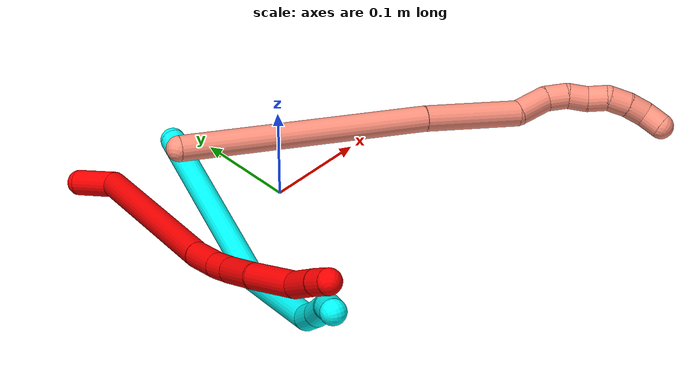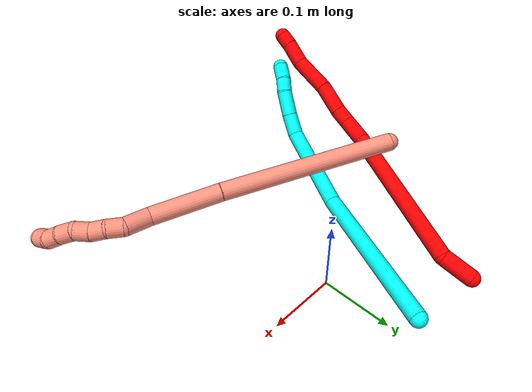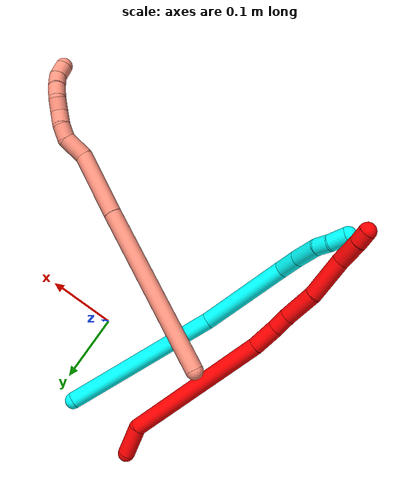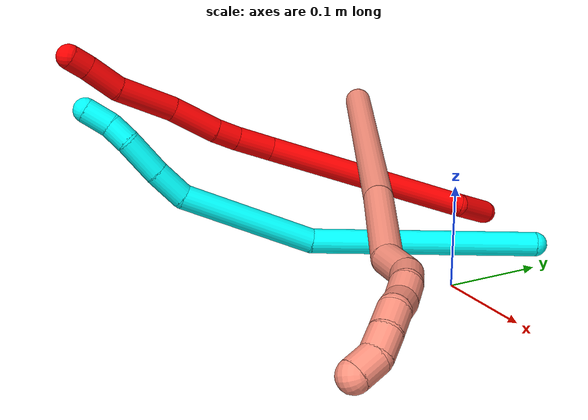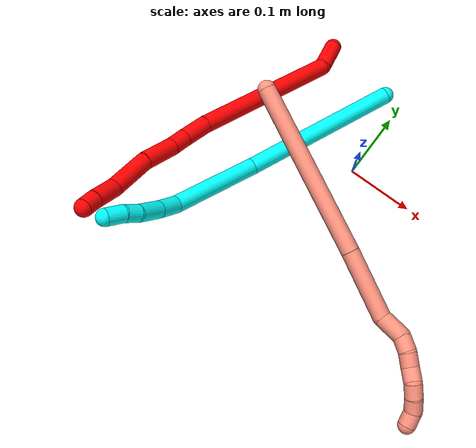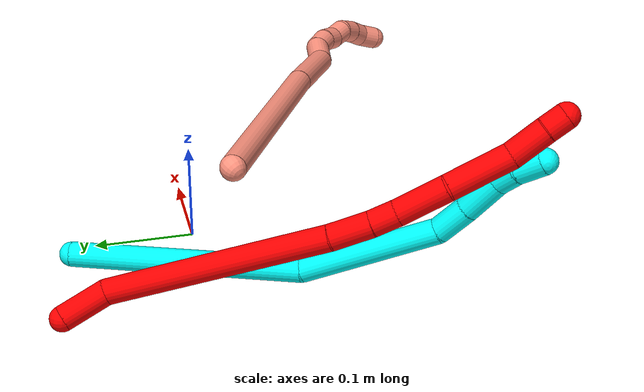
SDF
<sdf version="1.7">
 <world name="default">
  <model name="photoneo_s_sensor">
   <static>1</static>
   <pose>0 0 2 1.57079 1.57079 3.14159</pose>
   <link name="link">
    <inertial><mass>0.1</mass></inertial>
    <sensor name="sensor" type="depth">
     <update_rate>30</update_rate>
     <camera>
      <horizontal_fov>1.22</horizontal_fov>
      <image><width>1920</width><height>1200</height><format>B8G8R8</format></image>
      <clip><near>0.1</near><far>4</far></clip>
      <depth_camera><output>points</output></depth_camera>
     </camera>
     <plugin name="camera_plugin" filename="libgazebo_ros_depth_camera.so">
      <baseline>0.2</baseline>
      <alwaysOn>1</alwaysOn>
      <updateRate>0.0</updateRate>
      <cameraName>camera_ir</cameraName>
      <imageTopicName>/camera/color/image_raw</imageTopicName>
      <cameraInfoTopicName>/camera/color/camera_info</cameraInfoTopicName>
      <depthImageTopicName>/camera/depth/image_raw</depthImageTopicName>
      <depthImageCameraInfoTopicName>/camera/depth/camera_info</depthImageCameraInfoTopicName>
      <pointCloudTopicName>/camera/depth/points</pointCloudTopicName>
      <frameName>fr_optical</frameName>
      <pointCloudCutoff>0.1</pointCloudCutoff>
      <pointCloudCutoffMax>2.0</pointCloudCutoffMax>
      <distortionK1>0</distortionK1>
      <distortionK2>0</distortionK2>
      <distortionK3>0</distortionK3>
      <distortionT1>0</distortionT1>
      <distortionT2>0</distortionT2>
      <CxPrime>0</CxPrime>
      <Cx>0</Cx>
      <Cy>0</Cy>
      <focalLength>0</focalLength>
      <hackBaseline>0</hackBaseline>
     </plugin>
    </sensor>
   </link>
  </model>
  <model name="bin">
   <static>1</static>
   <link name="bottom">
    <collision name="collision-bottom">
     <pose>0 0 -0.01 0 -0 0</pose>
     <geometry><box><size>0.8 0.6 0.02</size></box></geometry>
     <surface>
      <friction><ode><mu>100</mu><mu2>100</mu2></ode></friction>
      <contact><collide_bitmask>65535</collide_bitmask></contact>
     </surface>
    </collision>
   </link>
   <link name="west_wall">
    <collision name="collision-west_wall">
     <pose>-0.41 0 0.1 0 -0 0</pose>
     <geometry><box><size>0.02 0.6 0.2</size></box></geometry>
     <surface>
      <friction><ode><mu>100</mu><mu2>100</mu2></ode></friction>
      <contact><collide_bitmask>65535</collide_bitmask></contact>
     </surface>
    </collision>
   </link>
   <link name="east_wall">
    <collision name="collision-east_wall">
     <pose>0.41 0 0.1 0 -0 0</pose>
     <geometry><box><size>0.02 0.6 0.2</size></box></geometry>
     <surface>
      <friction><ode><mu>100</mu><mu2>100</mu2></ode></friction>
      <contact><collide_bitmask>65535</collide_bitmask></contact>
     </surface>
    </collision>
   </link>
   <link name="south_wall">
    <collision name="collision-south_wall">
     <pose>0 -0.31 0.1 0 -0 0</pose>
     <geometry><box><size>0.8 0.02 0.2</size></box></geometry>
     <surface>
      <friction><ode><mu>100</mu><mu2>100</mu2></ode></friction>
      <contact><collide_bitmask>65535</collide_bitmask></contact>
     </surface>
    </collision>
   </link>
   <link name="north_wall">
    <collision name="collision-north_wall">
     <pose>0 0.31 0.1 0 -0 0</pose>
     <geometry><box><size>0.8 0.02 0.2</size></box></geometry>
     <surface>
      <friction><ode><mu>100</mu><mu2>100</mu2></ode></friction>
      <contact><collide_bitmask>65535</collide_bitmask></contact>
     </surface>
    </collision>
   </link>
  </model>
  <model name="2">
   <static>0</static>
   <link name="2">
    <collision name="collision-cylinder-e_1_1_4">
     <pose>-0.006942 -0.017919 0.013159 0.937369 -0.302648 -0.154109</pose>
     <geometry><cylinder><radius>0.0125</radius><length>0.046581</length></cylinder></geometry>
     <surface>
      <friction><ode><mu>1.16</mu><mu2>1.16</mu2><slip1>0</slip1><slip2>0</slip2></ode></friction>
      <contact><ode><kp>1e+06</kp><kd>1</kd><max_vel>0</max_vel><min_depth>0.001</min_depth></ode></contact>
     </surface>
    </collision>
    <visual name="visual-cylinder-e_1_1_4">
     <pose>-0.006942 -0.017919 0.013159 0.937369 -0.302648 -0.154109</pose>
     <geometry><cylinder><radius>0.0125</radius><length>0.046581</length></cylinder></geometry>
     <material><ambient>1 0 0 1</ambient></material>
    </visual>
    <collision name="collision-cylinder-e_2_4_5">
     <pose>-0.021427 -0.086339 0.123754 0.478177 -0.068625 -0.016733</pose>
     <geometry><cylinder><radius>0.0125</radius><length>0.220008</length></cylinder></geometry>
     <surface>
      <friction><ode><mu>1.16</mu><mu2>1.16</mu2><slip1>0</slip1><slip2>0</slip2></ode></friction>
      <contact><ode><kp>1e+06</kp><kd>1</kd><max_vel>0</max_vel><min_depth>0.001</min_depth></ode></contact>
     </surface>
    </collision>
    <visual name="visual-cylinder-e_2_4_5">
     <pose>-0.021427 -0.086339 0.123754 0.478177 -0.068625 -0.016733</pose>
     <geometry><cylinder><radius>0.0125</radius><length>0.220008</length></cylinder></geometry>
     <material><ambient>1 0 0 1</ambient></material>
    </visual>
    <collision name="collision-cylinder-e_3_5_6">
     <pose>-0.031318 -0.14754 0.23736 0.584617 -0.120539 -0.036314</pose>
     <geometry><cylinder><radius>0.0125</radius><length>0.039065</length></cylinder></geometry>
     <surface>
      <friction><ode><mu>1.16</mu><mu2>1.16</mu2><slip1>0</slip1><slip2>0</slip2></ode></friction>
      <contact><ode><kp>1e+06</kp><kd>1</kd><max_vel>0</max_vel><min_depth>0.001</min_depth></ode></contact>
     </surface>
    </collision>
    <visual name="visual-cylinder-e_3_5_6">
     <pose>-0.031318 -0.14754 0.23736 0.584617 -0.120539 -0.036314</pose>
     <geometry><cylinder><radius>0.0125</radius><length>0.039065</length></cylinder></geometry>
     <material><ambient>1 0 0 1</ambient></material>
    </visual>
    <collision name="collision-cylinder-e_4_6_7">
     <pose>-0.034874 -0.165921 0.263244 0.668945 -0.097182 -0.033797</pose>
     <geometry><cylinder><radius>0.0125</radius><length>0.024882</length></cylinder></geometry>
     <surface>
      <friction><ode><mu>1.16</mu><mu2>1.16</mu2><slip1>0</slip1><slip2>0</slip2></ode></friction>
      <contact><ode><kp>1e+06</kp><kd>1</kd><max_vel>0</max_vel><min_depth>0.001</min_depth></ode></contact>
     </surface>
    </collision>
    <visual name="visual-cylinder-e_4_6_7">
     <pose>-0.034874 -0.165921 0.263244 0.668945 -0.097182 -0.033797</pose>
     <geometry><cylinder><radius>0.0125</radius><length>0.024882</length></cylinder></geometry>
     <material><ambient>1 0 0 1</ambient></material>
    </visual>
    <collision name="collision-cylinder-e_5_7_8">
     <pose>-0.035489 -0.189228 0.292495 0.674713 0.023679 0.008306</pose>
     <geometry><cylinder><radius>0.0125</radius><length>0.050052</length></cylinder></geometry>
     <surface>
      <friction><ode><mu>1.16</mu><mu2>1.16</mu2><slip1>0</slip1><slip2>0</slip2></ode></friction>
      <contact><ode><kp>1e+06</kp><kd>1</kd><max_vel>0</max_vel><min_depth>0.001</min_depth></ode></contact>
     </surface>
    </collision>
    <visual name="visual-cylinder-e_5_7_8">
     <pose>-0.035489 -0.189228 0.292495 0.674713 0.023679 0.008306</pose>
     <geometry><cylinder><radius>0.0125</radius><length>0.050052</length></cylinder></geometry>
     <material><ambient>1 0 0 1</ambient></material>
    </visual>
    <collision name="collision-cylinder-e_6_8_9">
     <pose>-0.039434 -0.225745 0.334002 0.76017 -0.148586 -0.059454</pose>
     <geometry><cylinder><radius>0.0125</radius><length>0.061305</length></cylinder></geometry>
     <surface>
      <friction><ode><mu>1.16</mu><mu2>1.16</mu2><slip1>0</slip1><slip2>0</slip2></ode></friction>
      <contact><ode><kp>1e+06</kp><kd>1</kd><max_vel>0</max_vel><min_depth>0.001</min_depth></ode></contact>
     </surface>
    </collision>
    <visual name="visual-cylinder-e_6_8_9">
     <pose>-0.039434 -0.225745 0.334002 0.76017 -0.148586 -0.059454</pose>
     <geometry><cylinder><radius>0.0125</radius><length>0.061305</length></cylinder></geometry>
     <material><ambient>1 0 0 1</ambient></material>
    </visual>
    <collision name="collision-cylinder-e_7_9_10">
     <pose>-0.042362 -0.260451 0.368372 0.839395 0.086473 0.038604</pose>
     <geometry><cylinder><radius>0.0125</radius><length>0.037271</length></cylinder></geometry>
     <surface>
      <friction><ode><mu>1.16</mu><mu2>1.16</mu2><slip1>0</slip1><slip2>0</slip2></ode></friction>
      <contact><ode><kp>1e+06</kp><kd>1</kd><max_vel>0</max_vel><min_depth>0.001</min_depth></ode></contact>
     </surface>
    </collision>
    <visual name="visual-cylinder-e_7_9_10">
     <pose>-0.042362 -0.260451 0.368372 0.839395 0.086473 0.038604</pose>
     <geometry><cylinder><radius>0.0125</radius><length>0.037271</length></cylinder></geometry>
     <material><ambient>1 0 0 1</ambient></material>
    </visual>
    <collision name="collision-cylinder-e_8_10_2">
     <pose>-0.040845 -0.282134 0.387603 0.855687 -0.008854 -0.004037</pose>
     <geometry><cylinder><radius>0.0125</radius><length>0.020836</length></cylinder></geometry>
     <surface>
      <friction><ode><mu>1.16</mu><mu2>1.16</mu2><slip1>0</slip1><slip2>0</slip2></ode></friction>
      <contact><ode><kp>1e+06</kp><kd>1</kd><max_vel>0</max_vel><min_depth>0.001</min_depth></ode></contact>
     </surface>
    </collision>
    <visual name="visual-cylinder-e_8_10_2">
     <pose>-0.040845 -0.282134 0.387603 0.855687 -0.008854 -0.004037</pose>
     <geometry><cylinder><radius>0.0125</radius><length>0.020836</length></cylinder></geometry>
     <material><ambient>1 0 0 1</ambient></material>
    </visual>
    <collision name="collision-sphere-2">
     <pose>-0.040937 -0.289999 0.394434 0 -0 0</pose>
     <geometry><sphere><radius>0.0125</radius></sphere></geometry>
     <surface>
      <friction><ode><mu>1.16</mu><mu2>1.16</mu2><slip1>0</slip1><slip2>0</slip2></ode></friction>
      <contact><ode><kp>1e+06</kp><kd>1</kd><max_vel>0</max_vel><min_depth>0.001</min_depth></ode></contact>
     </surface>
    </collision>
    <visual name="visual-sphere-2">
     <pose>-0.040937 -0.289999 0.394434 0 -0 0</pose>
     <geometry><sphere><radius>0.0125</radius></sphere></geometry>
     <material><ambient>1 0 0 1</ambient></material>
    </visual>
    <collision name="collision-sphere-10">
     <pose>-0.040753 -0.274269 0.380772 0 -0 0</pose>
     <geometry><sphere><radius>0.0125</radius></sphere></geometry>
     <surface>
      <friction><ode><mu>1.16</mu><mu2>1.16</mu2><slip1>0</slip1><slip2>0</slip2></ode></friction>
      <contact><ode><kp>1e+06</kp><kd>1</kd><max_vel>0</max_vel><min_depth>0.001</min_depth></ode></contact>
     </surface>
    </collision>
    <visual name="visual-sphere-10">
     <pose>-0.040753 -0.274269 0.380772 0 -0 0</pose>
     <geometry><sphere><radius>0.0125</radius></sphere></geometry>
     <material><ambient>1 0 0 1</ambient></material>
    </visual>
    <collision name="collision-sphere-9">
     <pose>-0.043972 -0.246634 0.355971 0 -0 0</pose>
     <geometry><sphere><radius>0.0125</radius></sphere></geometry>
     <surface>
      <friction><ode><mu>1.16</mu><mu2>1.16</mu2><slip1>0</slip1><slip2>0</slip2></ode></friction>
      <contact><ode><kp>1e+06</kp><kd>1</kd><max_vel>0</max_vel><min_depth>0.001</min_depth></ode></contact>
     </surface>
    </collision>
    <visual name="visual-sphere-9">
     <pose>-0.043972 -0.246634 0.355971 0 -0 0</pose>
     <geometry><sphere><radius>0.0125</radius></sphere></geometry>
     <material><ambient>1 0 0 1</ambient></material>
    </visual>
    <collision name="collision-sphere-4">
     <pose>-0.013883 -0.035838 0.026319 0 -0 0</pose>
     <geometry><sphere><radius>0.0125</radius></sphere></geometry>
     <surface>
      <friction><ode><mu>1.16</mu><mu2>1.16</mu2><slip1>0</slip1><slip2>0</slip2></ode></friction>
      <contact><ode><kp>1e+06</kp><kd>1</kd><max_vel>0</max_vel><min_depth>0.001</min_depth></ode></contact>
     </surface>
    </collision>
    <visual name="visual-sphere-4">
     <pose>-0.013883 -0.035838 0.026319 0 -0 0</pose>
     <geometry><sphere><radius>0.0125</radius></sphere></geometry>
     <material><ambient>1 0 0 1</ambient></material>
    </visual>
    <collision name="collision-sphere-1">
     <geometry><sphere><radius>0.0125</radius></sphere></geometry>
     <surface>
      <friction><ode><mu>1.16</mu><mu2>1.16</mu2><slip1>0</slip1><slip2>0</slip2></ode></friction>
      <contact><ode><kp>1e+06</kp><kd>1</kd><max_vel>0</max_vel><min_depth>0.001</min_depth></ode></contact>
     </surface>
    </collision>
    <visual name="visual-sphere-1">
     <geometry><sphere><radius>0.0125</radius></sphere></geometry>
     <material><ambient>1 0 0 1</ambient></material>
    </visual>
    <collision name="collision-sphere-8">
     <pose>-0.034896 -0.204857 0.312032 0 -0 0</pose>
     <geometry><sphere><radius>0.0125</radius></sphere></geometry>
     <surface>
      <friction><ode><mu>1.16</mu><mu2>1.16</mu2><slip1>0</slip1><slip2>0</slip2></ode></friction>
      <contact><ode><kp>1e+06</kp><kd>1</kd><max_vel>0</max_vel><min_depth>0.001</min_depth></ode></contact>
     </surface>
    </collision>
    <visual name="visual-sphere-8">
     <pose>-0.034896 -0.204857 0.312032 0 -0 0</pose>
     <geometry><sphere><radius>0.0125</radius></sphere></geometry>
     <material><ambient>1 0 0 1</ambient></material>
    </visual>
    <collision name="collision-sphere-5">
     <pose>-0.02897 -0.136839 0.22119 0 -0 0</pose>
     <geometry><sphere><radius>0.0125</radius></sphere></geometry>
     <surface>
      <friction><ode><mu>1.16</mu><mu2>1.16</mu2><slip1>0</slip1><slip2>0</slip2></ode></friction>
      <contact><ode><kp>1e+06</kp><kd>1</kd><max_vel>0</max_vel><min_depth>0.001</min_depth></ode></contact>
     </surface>
    </collision>
    <visual name="visual-sphere-5">
     <pose>-0.02897 -0.136839 0.22119 0 -0 0</pose>
     <geometry><sphere><radius>0.0125</radius></sphere></geometry>
     <material><ambient>1 0 0 1</ambient></material>
    </visual>
    <collision name="collision-sphere-6">
     <pose>-0.033667 -0.158242 0.25353 0 -0 0</pose>
     <geometry><sphere><radius>0.0125</radius></sphere></geometry>
     <surface>
      <friction><ode><mu>1.16</mu><mu2>1.16</mu2><slip1>0</slip1><slip2>0</slip2></ode></friction>
      <contact><ode><kp>1e+06</kp><kd>1</kd><max_vel>0</max_vel><min_depth>0.001</min_depth></ode></contact>
     </surface>
    </collision>
    <visual name="visual-sphere-6">
     <pose>-0.033667 -0.158242 0.25353 0 -0 0</pose>
     <geometry><sphere><radius>0.0125</radius></sphere></geometry>
     <material><ambient>1 0 0 1</ambient></material>
    </visual>
    <collision name="collision-sphere-7">
     <pose>-0.036081 -0.1736 0.272958 0 -0 0</pose>
     <geometry><sphere><radius>0.0125</radius></sphere></geometry>
     <surface>
      <friction><ode><mu>1.16</mu><mu2>1.16</mu2><slip1>0</slip1><slip2>0</slip2></ode></friction>
      <contact><ode><kp>1e+06</kp><kd>1</kd><max_vel>0</max_vel><min_depth>0.001</min_depth></ode></contact>
     </surface>
    </collision>
    <visual name="visual-sphere-7">
     <pose>-0.036081 -0.1736 0.272958 0 -0 0</pose>
     <geometry><sphere><radius>0.0125</radius></sphere></geometry>
     <material><ambient>1 0 0 1</ambient></material>
    </visual>
    <inertial>
     <pose>-0.027505 -0.137237 0.201168 0 -0 0</pose>
     <mass>0.5</mass>
     <inertia>
      <ixx>0.000932</ixx>
      <ixy>0</ixy>
      <ixz>0</ixz>
      <iyy>0.000799</iyy>
      <iyz>0</iyz>
      <izz>0.000551</izz>
     </inertia>
    </inertial>
   </link>
   <pose>-0.137813 0.141772 0.011588 -1.48739 -0.772404 2.34294</pose>
  </model>
  <model name="3">
   <static>0</static>
   <link name="3">
    <collision name="collision-cylinder-e_1_1_4">
     <pose>-0.087629 -0.071217 0.028877 1.18557 -0.850845 -0.592445</pose>
     <geometry><cylinder><radius>0.0125</radius><length>0.233106</length></cylinder></geometry>
     <surface>
      <friction><ode><mu>1.16</mu><mu2>1.16</mu2><slip1>0</slip1><slip2>0</slip2></ode></friction>
      <contact><ode><kp>1e+06</kp><kd>1</kd><max_vel>0</max_vel><min_depth>0.001</min_depth></ode></contact>
     </surface>
    </collision>
    <visual name="visual-cylinder-e_1_1_4">
     <pose>-0.087629 -0.071217 0.028877 1.18557 -0.850845 -0.592445</pose>
     <geometry><cylinder><radius>0.0125</radius><length>0.233106</length></cylinder></geometry>
     <material><ambient>0.003922 1 0.996078 1</ambient></material>
    </visual>
    <collision name="collision-cylinder-e_2_4_5">
     <pose>-0.209363 -0.201429 0.071773 1.33751 -0.512349 -0.408204</pose>
     <geometry><cylinder><radius>0.0125</radius><length>0.13914</length></cylinder></geometry>
     <surface>
      <friction><ode><mu>1.16</mu><mu2>1.16</mu2><slip1>0</slip1><slip2>0</slip2></ode></friction>
      <contact><ode><kp>1e+06</kp><kd>1</kd><max_vel>0</max_vel><min_depth>0.001</min_depth></ode></contact>
     </surface>
    </collision>
    <visual name="visual-cylinder-e_2_4_5">
     <pose>-0.209363 -0.201429 0.071773 1.33751 -0.512349 -0.408204</pose>
     <geometry><cylinder><radius>0.0125</radius><length>0.13914</length></cylinder></geometry>
     <material><ambient>0.003922 1 0.996078 1</ambient></material>
    </visual>
    <collision name="collision-cylinder-e_3_5_6">
     <pose>-0.245327 -0.277843 0.089568 1.35729 -0.103904 -0.083817</pose>
     <geometry><cylinder><radius>0.0125</radius><length>0.035843</length></cylinder></geometry>
     <surface>
      <friction><ode><mu>1.16</mu><mu2>1.16</mu2><slip1>0</slip1><slip2>0</slip2></ode></friction>
      <contact><ode><kp>1e+06</kp><kd>1</kd><max_vel>0</max_vel><min_depth>0.001</min_depth></ode></contact>
     </surface>
    </collision>
    <visual name="visual-cylinder-e_3_5_6">
     <pose>-0.245327 -0.277843 0.089568 1.35729 -0.103904 -0.083817</pose>
     <geometry><cylinder><radius>0.0125</radius><length>0.035843</length></cylinder></geometry>
     <material><ambient>0.003922 1 0.996078 1</ambient></material>
    </visual>
    <collision name="collision-cylinder-e_4_6_7">
     <pose>-0.247682 -0.315176 0.098459 1.31941 -0.024104 -0.018696</pose>
     <geometry><cylinder><radius>0.0125</radius><length>0.041129</length></cylinder></geometry>
     <surface>
      <friction><ode><mu>1.16</mu><mu2>1.16</mu2><slip1>0</slip1><slip2>0</slip2></ode></friction>
      <contact><ode><kp>1e+06</kp><kd>1</kd><max_vel>0</max_vel><min_depth>0.001</min_depth></ode></contact>
     </surface>
    </collision>
    <visual name="visual-cylinder-e_4_6_7">
     <pose>-0.247682 -0.315176 0.098459 1.31941 -0.024104 -0.018696</pose>
     <geometry><cylinder><radius>0.0125</radius><length>0.041129</length></cylinder></geometry>
     <material><ambient>0.003922 1 0.996078 1</ambient></material>
    </visual>
    <collision name="collision-cylinder-e_5_7_8">
     <pose>-0.249454 -0.345235 0.10874 1.09977 -0.111617 -0.06846</pose>
     <geometry><cylinder><radius>0.0125</radius><length>0.022915</length></cylinder></geometry>
     <surface>
      <friction><ode><mu>1.16</mu><mu2>1.16</mu2><slip1>0</slip1><slip2>0</slip2></ode></friction>
      <contact><ode><kp>1e+06</kp><kd>1</kd><max_vel>0</max_vel><min_depth>0.001</min_depth></ode></contact>
     </surface>
    </collision>
    <visual name="visual-cylinder-e_5_7_8">
     <pose>-0.249454 -0.345235 0.10874 1.09977 -0.111617 -0.06846</pose>
     <geometry><cylinder><radius>0.0125</radius><length>0.022915</length></cylinder></geometry>
     <material><ambient>0.003922 1 0.996078 1</ambient></material>
    </visual>
    <collision name="collision-cylinder-e_6_8_2">
     <pose>-0.255262 -0.367398 0.119308 1.14839 -0.331334 -0.215485</pose>
     <geometry><cylinder><radius>0.0125</radius><length>0.027866</length></cylinder></geometry>
     <surface>
      <friction><ode><mu>1.16</mu><mu2>1.16</mu2><slip1>0</slip1><slip2>0</slip2></ode></friction>
      <contact><ode><kp>1e+06</kp><kd>1</kd><max_vel>0</max_vel><min_depth>0.001</min_depth></ode></contact>
     </surface>
    </collision>
    <visual name="visual-cylinder-e_6_8_2">
     <pose>-0.255262 -0.367398 0.119308 1.14839 -0.331334 -0.215485</pose>
     <geometry><cylinder><radius>0.0125</radius><length>0.027866</length></cylinder></geometry>
     <material><ambient>0.003922 1 0.996078 1</ambient></material>
    </visual>
    <collision name="collision-sphere-2">
     <pose>-0.259795 -0.379415 0.124709 0 -0 0</pose>
     <geometry><sphere><radius>0.0125</radius></sphere></geometry>
     <surface>
      <friction><ode><mu>1.16</mu><mu2>1.16</mu2><slip1>0</slip1><slip2>0</slip2></ode></friction>
      <contact><ode><kp>1e+06</kp><kd>1</kd><max_vel>0</max_vel><min_depth>0.001</min_depth></ode></contact>
     </surface>
    </collision>
    <visual name="visual-sphere-2">
     <pose>-0.259795 -0.379415 0.124709 0 -0 0</pose>
     <geometry><sphere><radius>0.0125</radius></sphere></geometry>
     <material><ambient>0.003922 1 0.996078 1</ambient></material>
    </visual>
    <collision name="collision-sphere-4">
     <pose>-0.175258 -0.142434 0.057755 0 -0 0</pose>
     <geometry><sphere><radius>0.0125</radius></sphere></geometry>
     <surface>
      <friction><ode><mu>1.16</mu><mu2>1.16</mu2><slip1>0</slip1><slip2>0</slip2></ode></friction>
      <contact><ode><kp>1e+06</kp><kd>1</kd><max_vel>0</max_vel><min_depth>0.001</min_depth></ode></contact>
     </surface>
    </collision>
    <visual name="visual-sphere-4">
     <pose>-0.175258 -0.142434 0.057755 0 -0 0</pose>
     <geometry><sphere><radius>0.0125</radius></sphere></geometry>
     <material><ambient>0.003922 1 0.996078 1</ambient></material>
    </visual>
    <collision name="collision-sphere-1">
     <geometry><sphere><radius>0.0125</radius></sphere></geometry>
     <surface>
      <friction><ode><mu>1.16</mu><mu2>1.16</mu2><slip1>0</slip1><slip2>0</slip2></ode></friction>
      <contact><ode><kp>1e+06</kp><kd>1</kd><max_vel>0</max_vel><min_depth>0.001</min_depth></ode></contact>
     </surface>
    </collision>
    <visual name="visual-sphere-1">
     <geometry><sphere><radius>0.0125</radius></sphere></geometry>
     <material><ambient>0.003922 1 0.996078 1</ambient></material>
    </visual>
    <collision name="collision-sphere-8">
     <pose>-0.25073 -0.355381 0.113907 0 -0 0</pose>
     <geometry><sphere><radius>0.0125</radius></sphere></geometry>
     <surface>
      <friction><ode><mu>1.16</mu><mu2>1.16</mu2><slip1>0</slip1><slip2>0</slip2></ode></friction>
      <contact><ode><kp>1e+06</kp><kd>1</kd><max_vel>0</max_vel><min_depth>0.001</min_depth></ode></contact>
     </surface>
    </collision>
    <visual name="visual-sphere-8">
     <pose>-0.25073 -0.355381 0.113907 0 -0 0</pose>
     <geometry><sphere><radius>0.0125</radius></sphere></geometry>
     <material><ambient>0.003922 1 0.996078 1</ambient></material>
    </visual>
    <collision name="collision-sphere-5">
     <pose>-0.243469 -0.260423 0.085791 0 -0 0</pose>
     <geometry><sphere><radius>0.0125</radius></sphere></geometry>
     <surface>
      <friction><ode><mu>1.16</mu><mu2>1.16</mu2><slip1>0</slip1><slip2>0</slip2></ode></friction>
      <contact><ode><kp>1e+06</kp><kd>1</kd><max_vel>0</max_vel><min_depth>0.001</min_depth></ode></contact>
     </surface>
    </collision>
    <visual name="visual-sphere-5">
     <pose>-0.243469 -0.260423 0.085791 0 -0 0</pose>
     <geometry><sphere><radius>0.0125</radius></sphere></geometry>
     <material><ambient>0.003922 1 0.996078 1</ambient></material>
    </visual>
    <collision name="collision-sphere-6">
     <pose>-0.247186 -0.295264 0.093345 0 -0 0</pose>
     <geometry><sphere><radius>0.0125</radius></sphere></geometry>
     <surface>
      <friction><ode><mu>1.16</mu><mu2>1.16</mu2><slip1>0</slip1><slip2>0</slip2></ode></friction>
      <contact><ode><kp>1e+06</kp><kd>1</kd><max_vel>0</max_vel><min_depth>0.001</min_depth></ode></contact>
     </surface>
    </collision>
    <visual name="visual-sphere-6">
     <pose>-0.247186 -0.295264 0.093345 0 -0 0</pose>
     <geometry><sphere><radius>0.0125</radius></sphere></geometry>
     <material><ambient>0.003922 1 0.996078 1</ambient></material>
    </visual>
    <collision name="collision-sphere-7">
     <pose>-0.248177 -0.335088 0.103573 0 -0 0</pose>
     <geometry><sphere><radius>0.0125</radius></sphere></geometry>
     <surface>
      <friction><ode><mu>1.16</mu><mu2>1.16</mu2><slip1>0</slip1><slip2>0</slip2></ode></friction>
      <contact><ode><kp>1e+06</kp><kd>1</kd><max_vel>0</max_vel><min_depth>0.001</min_depth></ode></contact>
     </surface>
    </collision>
    <visual name="visual-sphere-7">
     <pose>-0.248177 -0.335088 0.103573 0 -0 0</pose>
     <geometry><sphere><radius>0.0125</radius></sphere></geometry>
     <material><ambient>0.003922 1 0.996078 1</ambient></material>
    </visual>
    <inertial>
     <pose>-0.162735 -0.171397 0.059589 0 -0 0</pose>
     <mass>0.5</mass>
     <inertia>
      <ixx>0.00029</ixx>
      <ixy>0</ixy>
      <ixz>0</ixz>
      <iyy>0.000341</iyy>
      <iyz>0</iyz>
      <izz>0.001787</izz>
     </inertia>
    </inertial>
   </link>
   <pose>-0.028113 0.124756 0.01149 -1.44109 -0.658985 1.32037</pose>
  </model>
  <model name="16">
   <static>0</static>
   <link name="16">
    <collision name="collision-cylinder-e_1_1_4">
     <pose>0.102281 -0.023863 0.063697 0.358447 0.983927 0.193573</pose>
     <geometry><cylinder><radius>0.0125</radius><length>0.245668</length></cylinder></geometry>
     <surface>
      <friction><ode><mu>1.16</mu><mu2>1.16</mu2><slip1>0</slip1><slip2>0</slip2></ode></friction>
      <contact><ode><kp>1e+06</kp><kd>1</kd><max_vel>0</max_vel><min_depth>0.001</min_depth></ode></contact>
     </surface>
    </collision>
    <visual name="visual-cylinder-e_1_1_4">
     <pose>0.102281 -0.023863 0.063697 0.358447 0.983927 0.193573</pose>
     <geometry><cylinder><radius>0.0125</radius><length>0.245668</length></cylinder></geometry>
     <material><ambient>1 0.576471 0.494118 1</ambient></material>
    </visual>
    <collision name="collision-cylinder-e_2_4_5">
     <pose>0.24613 -0.054987 0.150483 0.304702 1.0435 0.176082</pose>
     <geometry><cylinder><radius>0.0125</radius><length>0.096202</length></cylinder></geometry>
     <surface>
      <friction><ode><mu>1.16</mu><mu2>1.16</mu2><slip1>0</slip1><slip2>0</slip2></ode></friction>
      <contact><ode><kp>1e+06</kp><kd>1</kd><max_vel>0</max_vel><min_depth>0.001</min_depth></ode></contact>
     </surface>
    </collision>
    <visual name="visual-cylinder-e_2_4_5">
     <pose>0.24613 -0.054987 0.150483 0.304702 1.0435 0.176082</pose>
     <geometry><cylinder><radius>0.0125</radius><length>0.096202</length></cylinder></geometry>
     <material><ambient>1 0.576471 0.494118 1</ambient></material>
    </visual>
    <collision name="collision-cylinder-e_3_5_6">
     <pose>0.298338 -0.064364 0.187159 0.154441 0.65857 0.052869</pose>
     <geometry><cylinder><radius>0.0125</radius><length>0.034773</length></cylinder></geometry>
     <surface>
      <friction><ode><mu>1.16</mu><mu2>1.16</mu2><slip1>0</slip1><slip2>0</slip2></ode></friction>
      <contact><ode><kp>1e+06</kp><kd>1</kd><max_vel>0</max_vel><min_depth>0.001</min_depth></ode></contact>
     </surface>
    </collision>
    <visual name="visual-cylinder-e_3_5_6">
     <pose>0.298338 -0.064364 0.187159 0.154441 0.65857 0.052869</pose>
     <geometry><cylinder><radius>0.0125</radius><length>0.034773</length></cylinder></geometry>
     <material><ambient>1 0.576471 0.494118 1</ambient></material>
    </visual>
    <collision name="collision-cylinder-e_4_6_7">
     <pose>0.31776 -0.070519 0.205694 0.684681 0.94193 0.359009</pose>
     <geometry><cylinder><radius>0.0125</radius><length>0.021719</length></cylinder></geometry>
     <surface>
      <friction><ode><mu>1.16</mu><mu2>1.16</mu2><slip1>0</slip1><slip2>0</slip2></ode></friction>
      <contact><ode><kp>1e+06</kp><kd>1</kd><max_vel>0</max_vel><min_depth>0.001</min_depth></ode></contact>
     </surface>
    </collision>
    <visual name="visual-cylinder-e_4_6_7">
     <pose>0.31776 -0.070519 0.205694 0.684681 0.94193 0.359009</pose>
     <geometry><cylinder><radius>0.0125</radius><length>0.021719</length></cylinder></geometry>
     <material><ambient>1 0.576471 0.494118 1</ambient></material>
    </visual>
    <collision name="collision-cylinder-e_5_7_8">
     <pose>0.336143 -0.077036 0.213 0.810053 1.22858 0.587304</pose>
     <geometry><cylinder><radius>0.0125</radius><length>0.020383</length></cylinder></geometry>
     <surface>
      <friction><ode><mu>1.16</mu><mu2>1.16</mu2><slip1>0</slip1><slip2>0</slip2></ode></friction>
      <contact><ode><kp>1e+06</kp><kd>1</kd><max_vel>0</max_vel><min_depth>0.001</min_depth></ode></contact>
     </surface>
    </collision>
    <visual name="visual-cylinder-e_5_7_8">
     <pose>0.336143 -0.077036 0.213 0.810053 1.22858 0.587304</pose>
     <geometry><cylinder><radius>0.0125</radius><length>0.020383</length></cylinder></geometry>
     <material><ambient>1 0.576471 0.494118 1</ambient></material>
    </visual>
    <collision name="collision-cylinder-e_6_8_9">
     <pose>0.353862 -0.084696 0.218468 1.03046 0.930797 0.554098</pose>
     <geometry><cylinder><radius>0.0125</radius><length>0.020243</length></cylinder></geometry>
     <surface>
      <friction><ode><mu>1.16</mu><mu2>1.16</mu2><slip1>0</slip1><slip2>0</slip2></ode></friction>
      <contact><ode><kp>1e+06</kp><kd>1</kd><max_vel>0</max_vel><min_depth>0.001</min_depth></ode></contact>
     </surface>
    </collision>
    <visual name="visual-cylinder-e_6_8_9">
     <pose>0.353862 -0.084696 0.218468 1.03046 0.930797 0.554098</pose>
     <geometry><cylinder><radius>0.0125</radius><length>0.020243</length></cylinder></geometry>
     <material><ambient>1 0.576471 0.494118 1</ambient></material>
    </visual>
    <collision name="collision-cylinder-e_7_9_10">
     <pose>0.372191 -0.091419 0.222632 0.969848 1.39006 0.827895</pose>
     <geometry><cylinder><radius>0.0125</radius><length>0.020761</length></cylinder></geometry>
     <surface>
      <friction><ode><mu>1.16</mu><mu2>1.16</mu2><slip1>0</slip1><slip2>0</slip2></ode></friction>
      <contact><ode><kp>1e+06</kp><kd>1</kd><max_vel>0</max_vel><min_depth>0.001</min_depth></ode></contact>
     </surface>
    </collision>
    <visual name="visual-cylinder-e_7_9_10">
     <pose>0.372191 -0.091419 0.222632 0.969848 1.39006 0.827895</pose>
     <geometry><cylinder><radius>0.0125</radius><length>0.020761</length></cylinder></geometry>
     <material><ambient>1 0.576471 0.494118 1</ambient></material>
    </visual>
    <collision name="collision-cylinder-e_8_10_11">
     <pose>0.392437 -0.09341 0.223388 2.15647 1.51682 2.1108</pose>
     <geometry><cylinder><radius>0.0125</radius><length>0.020099</length></cylinder></geometry>
     <surface>
      <friction><ode><mu>1.16</mu><mu2>1.16</mu2><slip1>0</slip1><slip2>0</slip2></ode></friction>
      <contact><ode><kp>1e+06</kp><kd>1</kd><max_vel>0</max_vel><min_depth>0.001</min_depth></ode></contact>
     </surface>
    </collision>
    <visual name="visual-cylinder-e_8_10_11">
     <pose>0.392437 -0.09341 0.223388 2.15647 1.51682 2.1108</pose>
     <geometry><cylinder><radius>0.0125</radius><length>0.020099</length></cylinder></geometry>
     <material><ambient>1 0.576471 0.494118 1</ambient></material>
    </visual>
    <collision name="collision-cylinder-e_9_11_2">
     <pose>0.411449 -0.09683 0.219606 2.43564 1.09944 2.0589</pose>
     <geometry><cylinder><radius>0.0125</radius><length>0.020153</length></cylinder></geometry>
     <surface>
      <friction><ode><mu>1.16</mu><mu2>1.16</mu2><slip1>0</slip1><slip2>0</slip2></ode></friction>
      <contact><ode><kp>1e+06</kp><kd>1</kd><max_vel>0</max_vel><min_depth>0.001</min_depth></ode></contact>
     </surface>
    </collision>
    <visual name="visual-cylinder-e_9_11_2">
     <pose>0.411449 -0.09683 0.219606 2.43564 1.09944 2.0589</pose>
     <geometry><cylinder><radius>0.0125</radius><length>0.020153</length></cylinder></geometry>
     <material><ambient>1 0.576471 0.494118 1</ambient></material>
    </visual>
    <collision name="collision-sphere-2">
     <pose>0.420427 -0.099798 0.216124 0 -0 0</pose>
     <geometry><sphere><radius>0.0125</radius></sphere></geometry>
     <surface>
      <friction><ode><mu>1.16</mu><mu2>1.16</mu2><slip1>0</slip1><slip2>0</slip2></ode></friction>
      <contact><ode><kp>1e+06</kp><kd>1</kd><max_vel>0</max_vel><min_depth>0.001</min_depth></ode></contact>
     </surface>
    </collision>
    <visual name="visual-sphere-2">
     <pose>0.420427 -0.099798 0.216124 0 -0 0</pose>
     <geometry><sphere><radius>0.0125</radius></sphere></geometry>
     <material><ambient>1 0.576471 0.494118 1</ambient></material>
    </visual>
    <collision name="collision-sphere-11">
     <pose>0.402472 -0.093861 0.223088 0 -0 0</pose>
     <geometry><sphere><radius>0.0125</radius></sphere></geometry>
     <surface>
      <friction><ode><mu>1.16</mu><mu2>1.16</mu2><slip1>0</slip1><slip2>0</slip2></ode></friction>
      <contact><ode><kp>1e+06</kp><kd>1</kd><max_vel>0</max_vel><min_depth>0.001</min_depth></ode></contact>
     </surface>
    </collision>
    <visual name="visual-sphere-11">
     <pose>0.402472 -0.093861 0.223088 0 -0 0</pose>
     <geometry><sphere><radius>0.0125</radius></sphere></geometry>
     <material><ambient>1 0.576471 0.494118 1</ambient></material>
    </visual>
    <collision name="collision-sphere-10">
     <pose>0.382403 -0.092958 0.223687 0 -0 0</pose>
     <geometry><sphere><radius>0.0125</radius></sphere></geometry>
     <surface>
      <friction><ode><mu>1.16</mu><mu2>1.16</mu2><slip1>0</slip1><slip2>0</slip2></ode></friction>
      <contact><ode><kp>1e+06</kp><kd>1</kd><max_vel>0</max_vel><min_depth>0.001</min_depth></ode></contact>
     </surface>
    </collision>
    <visual name="visual-sphere-10">
     <pose>0.382403 -0.092958 0.223687 0 -0 0</pose>
     <geometry><sphere><radius>0.0125</radius></sphere></geometry>
     <material><ambient>1 0.576471 0.494118 1</ambient></material>
    </visual>
    <collision name="collision-sphere-9">
     <pose>0.36198 -0.08988 0.221577 0 -0 0</pose>
     <geometry><sphere><radius>0.0125</radius></sphere></geometry>
     <surface>
      <friction><ode><mu>1.16</mu><mu2>1.16</mu2><slip1>0</slip1><slip2>0</slip2></ode></friction>
      <contact><ode><kp>1e+06</kp><kd>1</kd><max_vel>0</max_vel><min_depth>0.001</min_depth></ode></contact>
     </surface>
    </collision>
    <visual name="visual-sphere-9">
     <pose>0.36198 -0.08988 0.221577 0 -0 0</pose>
     <geometry><sphere><radius>0.0125</radius></sphere></geometry>
     <material><ambient>1 0.576471 0.494118 1</ambient></material>
    </visual>
    <collision name="collision-sphere-4">
     <pose>0.204562 -0.047726 0.127394 0 -0 0</pose>
     <geometry><sphere><radius>0.0125</radius></sphere></geometry>
     <surface>
      <friction><ode><mu>1.16</mu><mu2>1.16</mu2><slip1>0</slip1><slip2>0</slip2></ode></friction>
      <contact><ode><kp>1e+06</kp><kd>1</kd><max_vel>0</max_vel><min_depth>0.001</min_depth></ode></contact>
     </surface>
    </collision>
    <visual name="visual-sphere-4">
     <pose>0.204562 -0.047726 0.127394 0 -0 0</pose>
     <geometry><sphere><radius>0.0125</radius></sphere></geometry>
     <material><ambient>1 0.576471 0.494118 1</ambient></material>
    </visual>
    <collision name="collision-sphere-1">
     <geometry><sphere><radius>0.0125</radius></sphere></geometry>
     <surface>
      <friction><ode><mu>1.16</mu><mu2>1.16</mu2><slip1>0</slip1><slip2>0</slip2></ode></friction>
      <contact><ode><kp>1e+06</kp><kd>1</kd><max_vel>0</max_vel><min_depth>0.001</min_depth></ode></contact>
     </surface>
    </collision>
    <visual name="visual-sphere-1">
     <geometry><sphere><radius>0.0125</radius></sphere></geometry>
     <material><ambient>1 0.576471 0.494118 1</ambient></material>
    </visual>
    <collision name="collision-sphere-8">
     <pose>0.345743 -0.079513 0.215358 0 -0 0</pose>
     <geometry><sphere><radius>0.0125</radius></sphere></geometry>
     <surface>
      <friction><ode><mu>1.16</mu><mu2>1.16</mu2><slip1>0</slip1><slip2>0</slip2></ode></friction>
      <contact><ode><kp>1e+06</kp><kd>1</kd><max_vel>0</max_vel><min_depth>0.001</min_depth></ode></contact>
     </surface>
    </collision>
    <visual name="visual-sphere-8">
     <pose>0.345743 -0.079513 0.215358 0 -0 0</pose>
     <geometry><sphere><radius>0.0125</radius></sphere></geometry>
     <material><ambient>1 0.576471 0.494118 1</ambient></material>
    </visual>
    <collision name="collision-sphere-5">
     <pose>0.287698 -0.062249 0.173573 0 -0 0</pose>
     <geometry><sphere><radius>0.0125</radius></sphere></geometry>
     <surface>
      <friction><ode><mu>1.16</mu><mu2>1.16</mu2><slip1>0</slip1><slip2>0</slip2></ode></friction>
      <contact><ode><kp>1e+06</kp><kd>1</kd><max_vel>0</max_vel><min_depth>0.001</min_depth></ode></contact>
     </surface>
    </collision>
    <visual name="visual-sphere-5">
     <pose>0.287698 -0.062249 0.173573 0 -0 0</pose>
     <geometry><sphere><radius>0.0125</radius></sphere></geometry>
     <material><ambient>1 0.576471 0.494118 1</ambient></material>
    </visual>
    <collision name="collision-sphere-6">
     <pose>0.308978 -0.066479 0.200746 0 -0 0</pose>
     <geometry><sphere><radius>0.0125</radius></sphere></geometry>
     <surface>
      <friction><ode><mu>1.16</mu><mu2>1.16</mu2><slip1>0</slip1><slip2>0</slip2></ode></friction>
      <contact><ode><kp>1e+06</kp><kd>1</kd><max_vel>0</max_vel><min_depth>0.001</min_depth></ode></contact>
     </surface>
    </collision>
    <visual name="visual-sphere-6">
     <pose>0.308978 -0.066479 0.200746 0 -0 0</pose>
     <geometry><sphere><radius>0.0125</radius></sphere></geometry>
     <material><ambient>1 0.576471 0.494118 1</ambient></material>
    </visual>
    <collision name="collision-sphere-7">
     <pose>0.326542 -0.074559 0.210642 0 -0 0</pose>
     <geometry><sphere><radius>0.0125</radius></sphere></geometry>
     <surface>
      <friction><ode><mu>1.16</mu><mu2>1.16</mu2><slip1>0</slip1><slip2>0</slip2></ode></friction>
      <contact><ode><kp>1e+06</kp><kd>1</kd><max_vel>0</max_vel><min_depth>0.001</min_depth></ode></contact>
     </surface>
    </collision>
    <visual name="visual-sphere-7">
     <pose>0.326542 -0.074559 0.210642 0 -0 0</pose>
     <geometry><sphere><radius>0.0125</radius></sphere></geometry>
     <material><ambient>1 0.576471 0.494118 1</ambient></material>
    </visual>
    <inertial>
     <pose>0.208004 -0.047867 0.126804 0 -0 0</pose>
     <mass>0.5</mass>
     <inertia>
      <ixx>0.000896</ixx>
      <ixy>0</ixy>
      <ixz>0</ixz>
      <iyy>0.001438</iyy>
      <iyz>0</iyz>
      <izz>-0.000842</izz>
     </inertia>
    </inertial>
   </link>
   <pose>-0.14737 -0.019946 0.155681 -1.16934 0.550913 -0.88221</pose>
  </model>
 </world>
</sdf>
